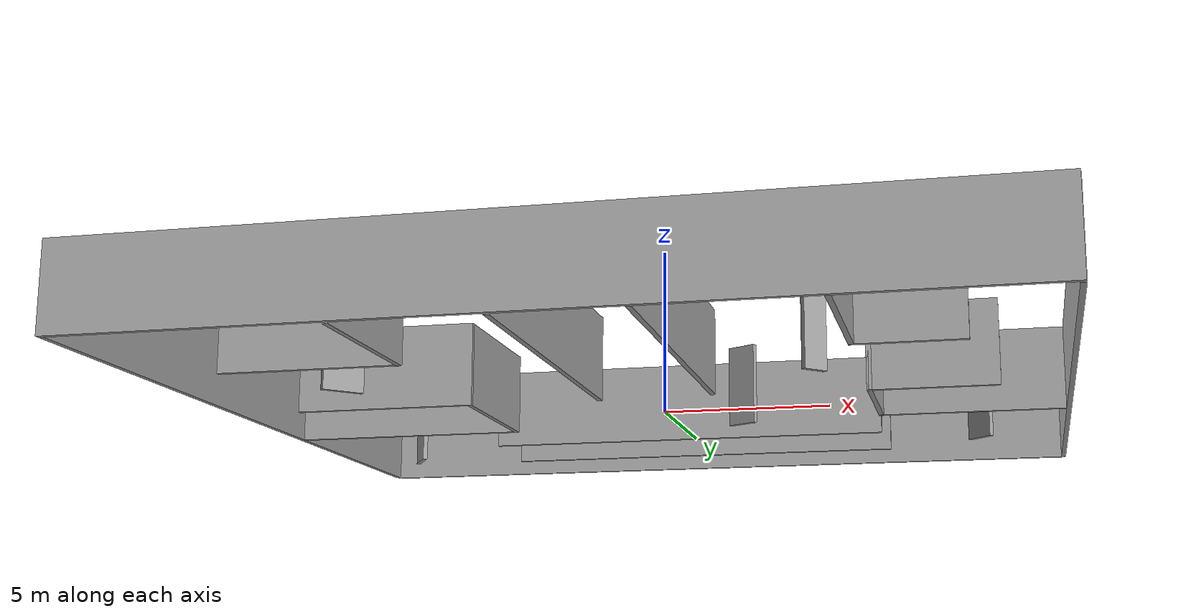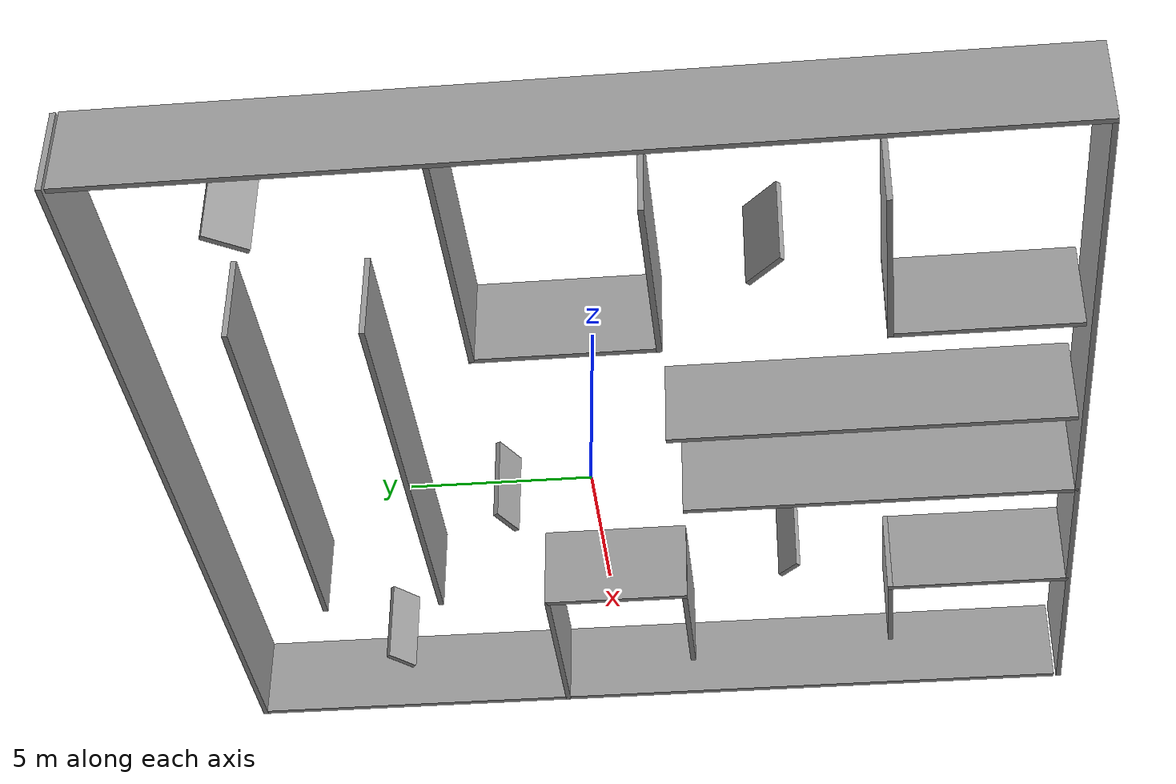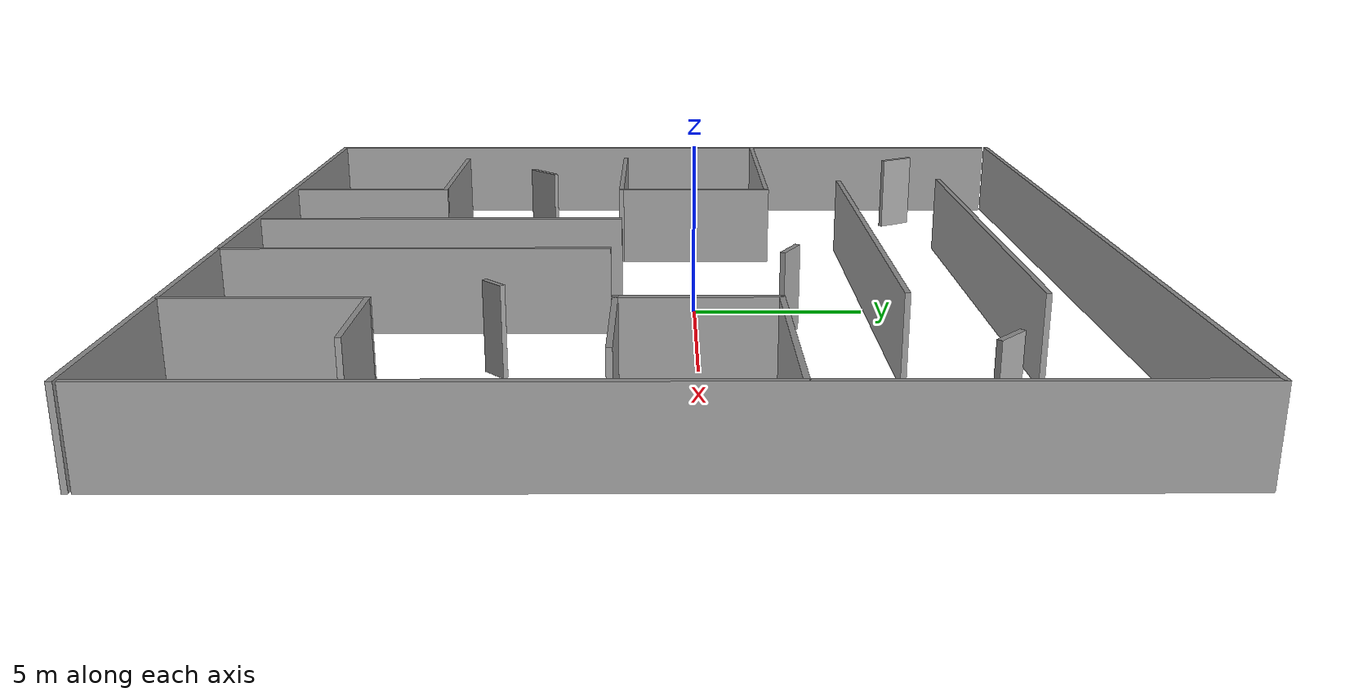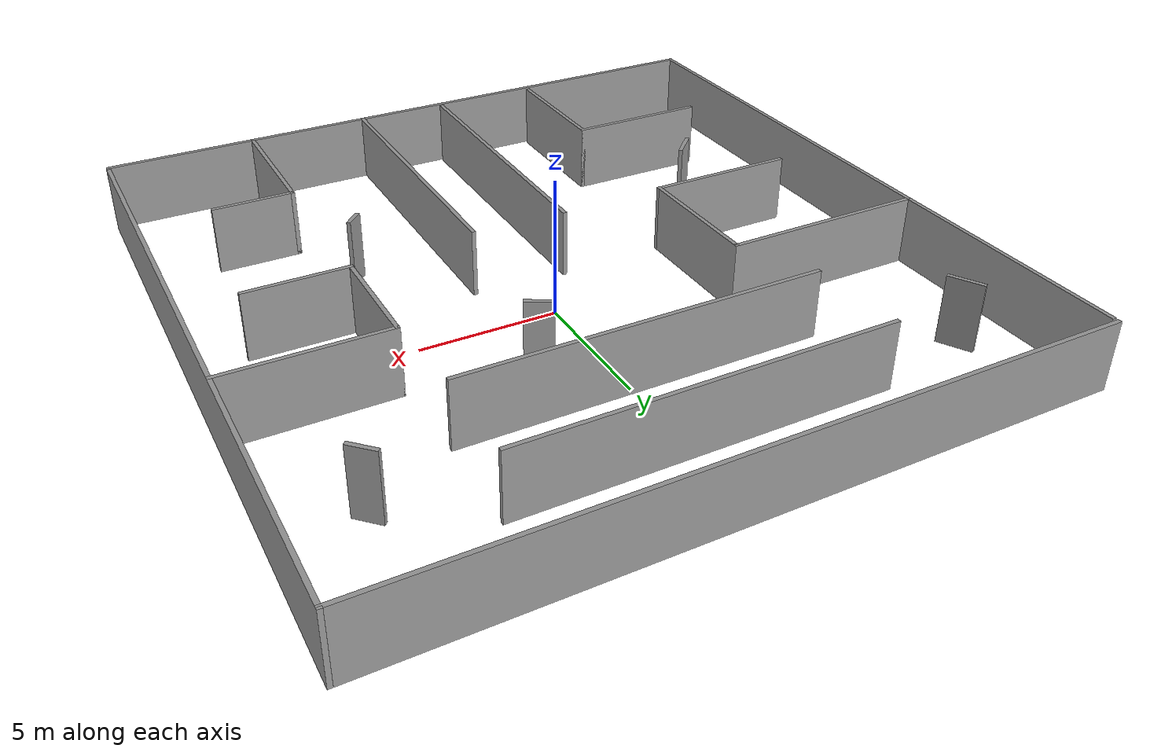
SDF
<?xml version='1.0'?>
<sdf version='1.7'>
  <model name='offcice'>
    <pose>-0.466959 -0.799808 0 0 -0 0</pose>
    <link name='Wall_10'>
      <collision name='Wall_10_Collision'>
        <geometry>
          <box>
            <size>25 0.15 2.5</size>
          </box>
        </geometry>
        <pose>0 0 1.25 0 -0 0</pose>
      </collision>
      <visual name='Wall_10_Visual'>
        <pose>0 0 1.25 0 -0 0</pose>
        <geometry>
          <box>
            <size>25 0.15 2.5</size>
          </box>
        </geometry>
        <material>
          <script>
            <uri>file://media/materials/scripts/gazebo.material</uri>
            <name>Gazebo/Grey</name>
          </script>
          <ambient>1 1 1 1</ambient>
        </material>
        <meta>
          <layer>0</layer>
        </meta>
      </visual>
      <pose>-0.011041 -12.5382 0 0 -0 0</pose>
    </link>
    <link name='Wall_13'>
      <collision name='Wall_13_Collision'>
        <geometry>
          <box>
            <size>13.25 0.15 2.5</size>
          </box>
        </geometry>
        <pose>0 0 1.25 0 -0 0</pose>
      </collision>
      <visual name='Wall_13_Visual'>
        <pose>0 0 1.25 0 -0 0</pose>
        <geometry>
          <box>
            <size>13.25 0.15 2.5</size>
          </box>
        </geometry>
        <material>
          <script>
            <uri>file://media/materials/scripts/gazebo.material</uri>
            <name>Gazebo/Grey</name>
          </script>
          <ambient>1 1 1 1</ambient>
        </material>
        <meta>
          <layer>0</layer>
        </meta>
      </visual>
      <pose>-0.017782 9.44155 0 0 -0 0</pose>
    </link>
    <link name='Wall_17'>
      <collision name='Wall_17_Collision'>
        <geometry>
          <box>
            <size>5.25 0.15 2.5</size>
          </box>
        </geometry>
        <pose>0 0 1.25 0 -0 0</pose>
      </collision>
      <visual name='Wall_17_Visual'>
        <pose>0 0 1.25 0 -0 0</pose>
        <geometry>
          <box>
            <size>5.25 0.15 2.5</size>
          </box>
        </geometry>
        <material>
          <script>
            <uri>file://media/materials/scripts/gazebo.material</uri>
            <name>Gazebo/Grey</name>
          </script>
          <ambient>1 1 1 1</ambient>
        </material>
        <meta>
          <layer>0</layer>
        </meta>
      </visual>
      <pose>6.92028 -9.9015 0 0 -0 -1.5708</pose>
    </link>
    <link name='Wall_19'>
      <collision name='Wall_19_Collision'>
        <geometry>
          <box>
            <size>3 0.15 2.5</size>
          </box>
        </geometry>
        <pose>0 0 1.25 0 -0 0</pose>
      </collision>
      <visual name='Wall_19_Visual'>
        <pose>0 0 1.25 0 -0 0</pose>
        <geometry>
          <box>
            <size>3 0.15 2.5</size>
          </box>
        </geometry>
        <material>
          <script>
            <uri>file://media/materials/scripts/gazebo.material</uri>
            <name>Gazebo/Grey</name>
          </script>
          <ambient>1 1 1 1</ambient>
        </material>
        <meta>
          <layer>0</layer>
        </meta>
      </visual>
      <pose>8.34528 -7.3515 0 0 -0 0</pose>
    </link>
    <link name='Wall_21'>
      <collision name='Wall_21_Collision'>
        <geometry>
          <box>
            <size>5.25 0.15 2.5</size>
          </box>
        </geometry>
        <pose>0 0 1.25 0 -0 0</pose>
      </collision>
      <visual name='Wall_21_Visual'>
        <pose>0 0 1.25 0 -0 0</pose>
        <geometry>
          <box>
            <size>5.25 0.15 2.5</size>
          </box>
        </geometry>
        <material>
          <script>
            <uri>file://media/materials/scripts/gazebo.material</uri>
            <name>Gazebo/Grey</name>
          </script>
          <ambient>1 1 1 1</ambient>
        </material>
        <meta>
          <layer>0</layer>
        </meta>
      </visual>
      <pose>-7.59807 -7.40747 0 0 -0 0</pose>
    </link>
    <link name='Wall_22'>
      <collision name='Wall_22_Collision'>
        <geometry>
          <box>
            <size>5 0.15 2.5</size>
          </box>
        </geometry>
        <pose>0 0 1.25 0 -0 0</pose>
      </collision>
      <visual name='Wall_22_Visual'>
        <pose>0 0 1.25 0 -0 0</pose>
        <geometry>
          <box>
            <size>5 0.15 2.5</size>
          </box>
        </geometry>
        <material>
          <script>
            <uri>file://media/materials/scripts/gazebo.material</uri>
            <name>Gazebo/Grey</name>
          </script>
          <ambient>1 1 1 1</ambient>
        </material>
        <meta>
          <layer>0</layer>
        </meta>
      </visual>
      <pose>-5.04807 -9.83247 0 0 -0 -1.5708</pose>
    </link>
    <link name='Wall_24'>
      <collision name='Wall_24_Collision'>
        <geometry>
          <box>
            <size>13 0.15 2.5</size>
          </box>
        </geometry>
        <pose>0 0 1.25 0 -0 0</pose>
      </collision>
      <visual name='Wall_24_Visual'>
        <pose>0 0 1.25 0 -0 0</pose>
        <geometry>
          <box>
            <size>13 0.15 2.5</size>
          </box>
        </geometry>
        <material>
          <script>
            <uri>file://media/materials/scripts/gazebo.material</uri>
            <name>Gazebo/Grey</name>
          </script>
          <ambient>1 1 1 1</ambient>
        </material>
        <meta>
          <layer>0</layer>
        </meta>
      </visual>
      <pose>0.078333 5.94792 0 0 -0 0</pose>
    </link>
    <link name='Wall_26'>
      <collision name='Wall_26_Collision'>
        <geometry>
          <box>
            <size>7.5 0.15 2.5</size>
          </box>
        </geometry>
        <pose>0 0 1.25 0 -0 0</pose>
      </collision>
      <visual name='Wall_26_Visual'>
        <pose>0 0 1.25 0 -0 0</pose>
        <geometry>
          <box>
            <size>7.5 0.15 2.5</size>
          </box>
        </geometry>
        <material>
          <script>
            <uri>file://media/materials/scripts/gazebo.material</uri>
            <name>Gazebo/Grey</name>
          </script>
          <ambient>1 1 1 1</ambient>
        </material>
        <meta>
          <layer>0</layer>
        </meta>
      </visual>
      <pose>-8.68602 3.33876 0 0 -0 0</pose>
    </link>
    <link name='Wall_27'>
      <collision name='Wall_27_Collision'>
        <geometry>
          <box>
            <size>5 0.15 2.5</size>
          </box>
        </geometry>
        <pose>0 0 1.25 0 -0 0</pose>
      </collision>
      <visual name='Wall_27_Visual'>
        <pose>0 0 1.25 0 -0 0</pose>
        <geometry>
          <box>
            <size>5 0.15 2.5</size>
          </box>
        </geometry>
        <material>
          <script>
            <uri>file://media/materials/scripts/gazebo.material</uri>
            <name>Gazebo/Grey</name>
          </script>
          <ambient>1 1 1 1</ambient>
        </material>
        <meta>
          <layer>0</layer>
        </meta>
      </visual>
      <pose>-5.01102 0.913757 0 0 -0 -1.5708</pose>
    </link>
    <link name='Wall_28'>
      <collision name='Wall_28_Collision'>
        <geometry>
          <box>
            <size>5.5 0.15 2.5</size>
          </box>
        </geometry>
        <pose>0 0 1.25 0 -0 0</pose>
      </collision>
      <visual name='Wall_28_Visual'>
        <pose>0 0 1.25 0 -0 0</pose>
        <geometry>
          <box>
            <size>5.5 0.15 2.5</size>
          </box>
        </geometry>
        <material>
          <script>
            <uri>file://media/materials/scripts/gazebo.material</uri>
            <name>Gazebo/Grey</name>
          </script>
          <ambient>1 1 1 1</ambient>
        </material>
        <meta>
          <layer>0</layer>
        </meta>
      </visual>
      <pose>-7.68602 -1.51124 0 0 -0 3.14159</pose>
    </link>
    <link name='Wall_30'>
      <collision name='Wall_30_Collision'>
        <geometry>
          <box>
            <size>5.75 0.15 2.5</size>
          </box>
        </geometry>
        <pose>0 0 1.25 0 -0 0</pose>
      </collision>
      <visual name='Wall_30_Visual'>
        <pose>0 0 1.25 0 -0 0</pose>
        <geometry>
          <box>
            <size>5.75 0.15 2.5</size>
          </box>
        </geometry>
        <material>
          <script>
            <uri>file://media/materials/scripts/gazebo.material</uri>
            <name>Gazebo/Grey</name>
          </script>
          <ambient>1 1 1 1</ambient>
        </material>
        <meta>
          <layer>0</layer>
        </meta>
      </visual>
      <pose>9.63184 2.80808 0 0 -0 0</pose>
    </link>
    <link name='Wall_32'>
      <collision name='Wall_32_Collision'>
        <geometry>
          <box>
            <size>4.25 0.15 2.5</size>
          </box>
        </geometry>
        <pose>0 0 1.25 0 -0 0</pose>
      </collision>
      <visual name='Wall_32_Visual'>
        <pose>0 0 1.25 0 -0 0</pose>
        <geometry>
          <box>
            <size>4.25 0.15 2.5</size>
          </box>
        </geometry>
        <material>
          <script>
            <uri>file://media/materials/scripts/gazebo.material</uri>
            <name>Gazebo/Grey</name>
          </script>
          <ambient>1 1 1 1</ambient>
        </material>
        <meta>
          <layer>0</layer>
        </meta>
      </visual>
      <pose>6.83183 0.758079 0 0 -0 -1.5708</pose>
    </link>
    <link name='Wall_33'>
      <collision name='Wall_33_Collision'>
        <geometry>
          <box>
            <size>3.75 0.15 2.5</size>
          </box>
        </geometry>
        <pose>0 0 1.25 0 -0 0</pose>
      </collision>
      <visual name='Wall_33_Visual'>
        <pose>0 0 1.25 0 -0 0</pose>
        <geometry>
          <box>
            <size>3.75 0.15 2.5</size>
          </box>
        </geometry>
        <material>
          <script>
            <uri>file://media/materials/scripts/gazebo.material</uri>
            <name>Gazebo/Grey</name>
          </script>
          <ambient>1 1 1 1</ambient>
        </material>
        <meta>
          <layer>0</layer>
        </meta>
      </visual>
      <pose>8.63184 -1.29192 0 0 -0 0</pose>
    </link>
    <link name='Wall_35'>
      <collision name='Wall_35_Collision'>
        <geometry>
          <box>
            <size>11 0.15 2.5</size>
          </box>
        </geometry>
        <pose>0 0 1.25 0 -0 0</pose>
      </collision>
      <visual name='Wall_35_Visual'>
        <pose>0 0 1.25 0 -0 0</pose>
        <geometry>
          <box>
            <size>11 0.15 2.5</size>
          </box>
        </geometry>
        <material>
          <script>
            <uri>file://media/materials/scripts/gazebo.material</uri>
            <name>Gazebo/Grey</name>
          </script>
          <ambient>1 1 1 1</ambient>
        </material>
        <meta>
          <layer>0</layer>
        </meta>
      </visual>
      <pose>-1.03989 -6.86952 0 0 -0 -1.5708</pose>
    </link>
    <link name='Wall_38'>
      <collision name='Wall_38_Collision'>
        <geometry>
          <box>
            <size>11 0.15 2.5</size>
          </box>
        </geometry>
        <pose>0 0 1.25 0 -0 0</pose>
      </collision>
      <visual name='Wall_38_Visual'>
        <pose>0 0 1.25 0 -0 0</pose>
        <geometry>
          <box>
            <size>11 0.15 2.5</size>
          </box>
        </geometry>
        <material>
          <script>
            <uri>file://media/materials/scripts/gazebo.material</uri>
            <name>Gazebo/Grey</name>
          </script>
          <ambient>1 1 1 1</ambient>
        </material>
        <meta>
          <layer>0</layer>
        </meta>
      </visual>
      <pose>2.3653 -7.0753 0 0 -0 -1.5708</pose>
    </link>
    <link name='Wall_4'>
      <collision name='Wall_4_Collision'>
        <geometry>
          <box>
            <size>25 0.15 2.5</size>
          </box>
        </geometry>
        <pose>0 0 1.25 0 -0 0</pose>
      </collision>
      <visual name='Wall_4_Visual'>
        <pose>0 0 1.25 0 -0 0</pose>
        <geometry>
          <box>
            <size>25 0.15 2.5</size>
          </box>
        </geometry>
        <material>
          <script>
            <uri>file://media/materials/scripts/gazebo.material</uri>
            <name>Gazebo/Grey</name>
          </script>
          <ambient>1 1 1 1</ambient>
        </material>
        <meta>
          <layer>0</layer>
        </meta>
      </visual>
      <pose>0.011041 12.538 0 0 -0 -1.6e-05</pose>
    </link>
    <link name='Wall_40'>
      <collision name='Wall_40_Collision'>
        <geometry>
          <box>
            <size>1.25 0.15 2.5</size>
          </box>
        </geometry>
        <pose>0 0 1.25 0 -0 0</pose>
      </collision>
      <visual name='Wall_40_Visual'>
        <pose>0 0 1.25 0 -0 0</pose>
        <geometry>
          <box>
            <size>1.25 0.15 2.5</size>
          </box>
        </geometry>
        <material>
          <script>
            <uri>file://media/materials/scripts/gazebo.material</uri>
            <name>Gazebo/Grey</name>
          </script>
          <ambient>1 1 1 1</ambient>
        </material>
        <meta>
          <layer>0</layer>
        </meta>
      </visual>
      <pose>-7.88538 -4.34697 0 0 -0 -2.35619</pose>
    </link>
    <link name='Wall_42'>
      <collision name='Wall_42_Collision'>
        <geometry>
          <box>
            <size>1 0.15 2.5</size>
          </box>
        </geometry>
        <pose>0 0 1.25 0 -0 0</pose>
      </collision>
      <visual name='Wall_42_Visual'>
        <pose>0 0 1.25 0 -0 0</pose>
        <geometry>
          <box>
            <size>1 0.15 2.5</size>
          </box>
        </geometry>
        <material>
          <script>
            <uri>file://media/materials/scripts/gazebo.material</uri>
            <name>Gazebo/Grey</name>
          </script>
          <ambient>1 1 1 1</ambient>
        </material>
        <meta>
          <layer>0</layer>
        </meta>
      </visual>
      <pose>9.6973 7.68167 0 0 -0 -0.785398</pose>
    </link>
    <link name='Wall_44'>
      <collision name='Wall_44_Collision'>
        <geometry>
          <box>
            <size>1.25 0.15 2.5</size>
          </box>
        </geometry>
        <pose>0 0 1.25 0 -0 0</pose>
      </collision>
      <visual name='Wall_44_Visual'>
        <pose>0 0 1.25 0 -0 0</pose>
        <geometry>
          <box>
            <size>1.25 0.15 2.5</size>
          </box>
        </geometry>
        <material>
          <script>
            <uri>file://media/materials/scripts/gazebo.material</uri>
            <name>Gazebo/Grey</name>
          </script>
          <ambient>1 1 1 1</ambient>
        </material>
        <meta>
          <layer>0</layer>
        </meta>
      </visual>
      <pose>-10.1402 8.61145 0 0 -0 -1.0472</pose>
    </link>
    <link name='Wall_46'>
      <collision name='Wall_46_Collision'>
        <geometry>
          <box>
            <size>1 0.15 2.5</size>
          </box>
        </geometry>
        <pose>0 0 1.25 0 -0 0</pose>
      </collision>
      <visual name='Wall_46_Visual'>
        <pose>0 0 1.25 0 -0 0</pose>
        <geometry>
          <box>
            <size>1 0.15 2.5</size>
          </box>
        </geometry>
        <material>
          <script>
            <uri>file://media/materials/scripts/gazebo.material</uri>
            <name>Gazebo/Grey</name>
          </script>
          <ambient>1 1 1 1</ambient>
        </material>
        <meta>
          <layer>0</layer>
        </meta>
      </visual>
      <pose>2.4238 3.43582 0 0 -0 -0.523599</pose>
    </link>
    <link name='Wall_48'>
      <collision name='Wall_48_Collision'>
        <geometry>
          <box>
            <size>0.75 0.15 2.5</size>
          </box>
        </geometry>
        <pose>0 0 1.25 0 -0 0</pose>
      </collision>
      <visual name='Wall_48_Visual'>
        <pose>0 0 1.25 0 -0 0</pose>
        <geometry>
          <box>
            <size>0.75 0.15 2.5</size>
          </box>
        </geometry>
        <material>
          <script>
            <uri>file://media/materials/scripts/gazebo.material</uri>
            <name>Gazebo/Grey</name>
          </script>
          <ambient>1 1 1 1</ambient>
        </material>
        <meta>
          <layer>0</layer>
        </meta>
      </visual>
      <pose>5.64679 -4.43553 0 0 -0 -2.35619</pose>
    </link>
    <link name='Wall_6'>
      <collision name='Wall_6_Collision'>
        <geometry>
          <box>
            <size>25 0.15 2.5</size>
          </box>
        </geometry>
        <pose>0 0 1.25 0 -0 0</pose>
      </collision>
      <visual name='Wall_6_Visual'>
        <pose>0 0 1.25 0 -0 0</pose>
        <geometry>
          <box>
            <size>25 0.15 2.5</size>
          </box>
        </geometry>
        <material>
          <script>
            <uri>file://media/materials/scripts/gazebo.material</uri>
            <name>Gazebo/Grey</name>
          </script>
          <ambient>1 1 1 1</ambient>
        </material>
        <meta>
          <layer>0</layer>
        </meta>
      </visual>
      <pose>-12.436 -0.113192 0 0 -0 -1.5708</pose>
    </link>
    <link name='Wall_8'>
      <collision name='Wall_8_Collision'>
        <geometry>
          <box>
            <size>25 0.15 2.5</size>
          </box>
        </geometry>
        <pose>0 0 1.25 0 -0 0</pose>
      </collision>
      <visual name='Wall_8_Visual'>
        <pose>0 0 1.25 0 -0 0</pose>
        <geometry>
          <box>
            <size>25 0.15 2.5</size>
          </box>
        </geometry>
        <material>
          <script>
            <uri>file://media/materials/scripts/gazebo.material</uri>
            <name>Gazebo/Grey</name>
          </script>
          <ambient>1 1 1 1</ambient>
        </material>
        <meta>
          <layer>0</layer>
        </meta>
      </visual>
      <pose>12.436 0.112808 0 0 -0 -1.5708</pose>
    </link>
    <static>1</static>
  </model>
</sdf>
